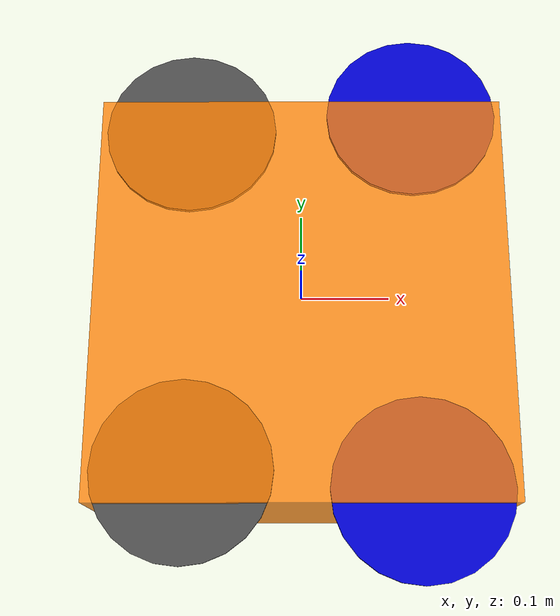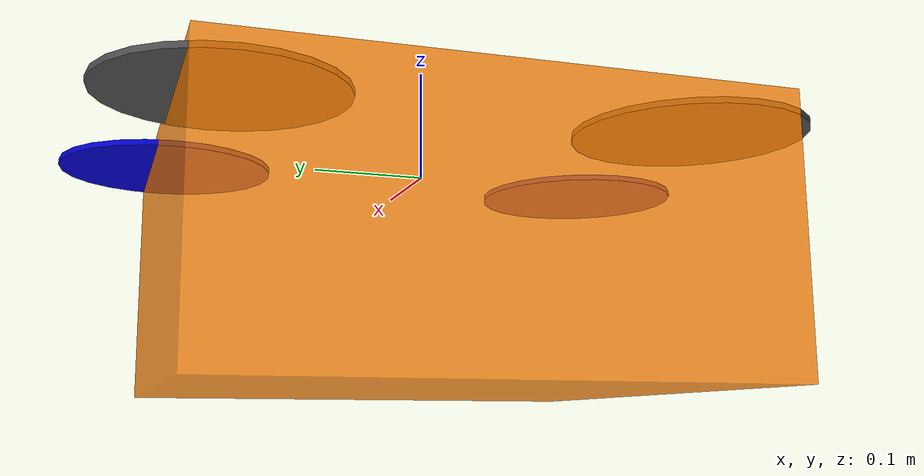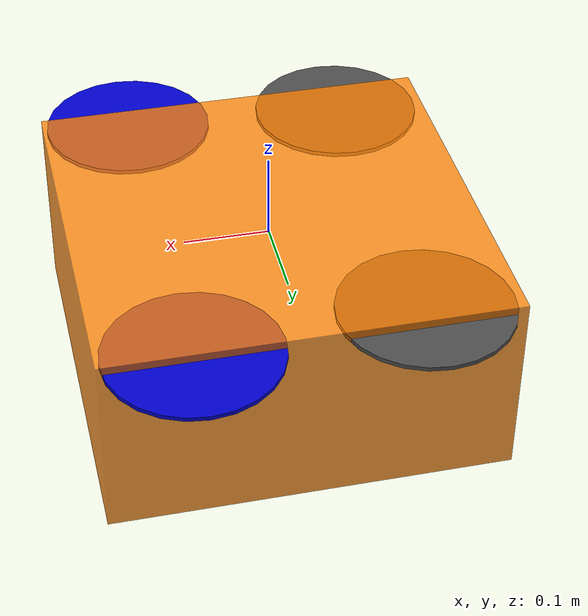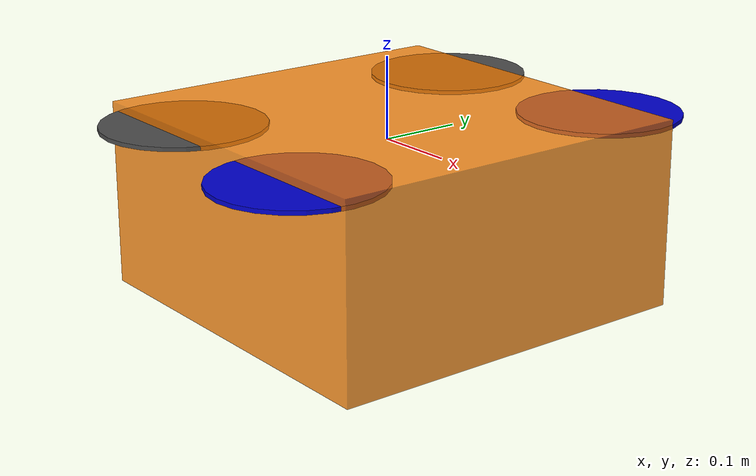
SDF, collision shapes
<?xml version='1.0'?>
<sdf version="1.9">
  <model name="quadcopter">

	<enable_wind>true</enable_wind>
    <include>
      <uri>model://quadcopter_model</uri>
    </include>

    <!-- plugins -->
    <plugin name="gz::sim::systems::LiftDrag" filename="gz-sim-lift-drag-system">
      <a0>0.1</a0>
      <alpha_stall>1.4</alpha_stall>
      <cla>0.2500</cla>
      <cda>0.10</cda>
      <cma>0.00</cma>
      <cla_stall>-0.025</cla_stall>
      <cda_stall>0.0</cda_stall>
      <cma_stall>0.0</cma_stall>
      <area>0.2</area>
      <air_density>1.2041</air_density>
      <cp>0.084 0 0</cp>
      <forward>0 1 0</forward>
      <upward>0 0 1</upward>
      <link_name>quadcopter_model::rotor_0</link_name>
    </plugin>
    <plugin name="gz::sim::systems::LiftDrag" filename="gz-sim-lift-drag-system">
      <a0>0.1</a0>
      <alpha_stall>1.4</alpha_stall>
      <cla>0.2500</cla>
      <cda>0.10</cda>
      <cma>0.00</cma>
      <cla_stall>-0.025</cla_stall>
      <cda_stall>0.0</cda_stall>
      <cma_stall>0.0</cma_stall>
      <area>0.2</area>
      <air_density>1.2041</air_density>
      <cp>-0.084 0 0</cp>
      <forward>0 -1 0</forward>
      <upward>0 0 1</upward>
      <link_name>quadcopter_model::rotor_0</link_name>
    </plugin>

    <plugin name="gz::sim::systems::LiftDrag" filename="gz-sim-lift-drag-system">
      <a0>0.1</a0>
      <alpha_stall>1.4</alpha_stall>
      <cla>0.2500</cla>
      <cda>0.10</cda>
      <cma>0.00</cma>
      <cla_stall>-0.025</cla_stall>
      <cda_stall>0.0</cda_stall>
      <cma_stall>0.0</cma_stall>
      <area>0.2</area>
      <air_density>1.2041</air_density>
      <cp>0.084 0 0</cp>
      <forward>0 1 0</forward>
      <upward>0 0 1</upward>
      <link_name>quadcopter_model::rotor_1</link_name>
    </plugin>
    <plugin name="gz::sim::systems::LiftDrag" filename="gz-sim-lift-drag-system">
      <a0>0.1</a0>
      <alpha_stall>1.4</alpha_stall>
      <cla>0.2500</cla>
      <cda>0.10</cda>
      <cma>0.00</cma>
      <cla_stall>-0.025</cla_stall>
      <cda_stall>0.0</cda_stall>
      <cma_stall>0.0</cma_stall>
      <area>0.2</area>
      <air_density>1.2041</air_density>
      <cp>-0.084 0 0</cp>
      <forward>0 -1 0</forward>
      <upward>0 0 1</upward>
      <link_name>quadcopter_model::rotor_1</link_name>
    </plugin>

    <plugin name="gz::sim::systems::LiftDrag" filename="gz-sim-lift-drag-system">
      <a0>0.1</a0>
      <alpha_stall>1.4</alpha_stall>
      <cla>0.2500</cla>
      <cda>0.10</cda>
      <cma>0.00</cma>
      <cla_stall>-0.025</cla_stall>
      <cda_stall>0.0</cda_stall>
      <cma_stall>0.0</cma_stall>
      <area>0.2</area>
      <air_density>1.2041</air_density>
      <cp>0.084 0 0</cp>
      <forward>0 -1 0</forward>
      <upward>0 0 1</upward>
      <link_name>quadcopter_model::rotor_2</link_name>
    </plugin>
    <plugin name="gz::sim::systems::LiftDrag" filename="gz-sim-lift-drag-system">
      <a0>0.1</a0>
      <alpha_stall>1.4</alpha_stall>
      <cla>0.2500</cla>
      <cda>0.10</cda>
      <cma>0.00</cma>
      <cla_stall>-0.025</cla_stall>
      <cda_stall>0.0</cda_stall>
      <cma_stall>0.0</cma_stall>
      <area>0.2</area>
      <air_density>1.2041</air_density>
      <cp>-0.084 0 0</cp>
      <forward>0 1 0</forward>
      <upward>0 0 1</upward>
      <link_name>quadcopter_model::rotor_2</link_name>
    </plugin>

    <plugin name="gz::sim::systems::LiftDrag" filename="gz-sim-lift-drag-system">
      <a0>0.1</a0>
      <alpha_stall>1.4</alpha_stall>
      <cla>0.2500</cla>
      <cda>0.10</cda>
      <cma>0.00</cma>
      <cla_stall>-0.025</cla_stall>
      <cda_stall>0.0</cda_stall>
      <cma_stall>0.0</cma_stall>
      <area>0.2</area>
      <air_density>1.2041</air_density>
      <cp>0.084 0 0</cp>
      <forward>0 -1 0</forward>
      <upward>0 0 1</upward>
      <link_name>quadcopter_model::rotor_3</link_name>
    </plugin>
    <plugin name="gz::sim::systems::LiftDrag" filename="gz-sim-lift-drag-system">
      <a0>0.1</a0>
      <alpha_stall>1.4</alpha_stall>
      <cla>0.2500</cla>
      <cda>0.10</cda>
      <cma>0.00</cma>
      <cla_stall>-0.025</cla_stall>
      <cda_stall>0.0</cda_stall>
      <cma_stall>0.0</cma_stall>
      <area>0.2</area>
      <air_density>1.2041</air_density>
      <cp>-0.084 0 0</cp>
      <forward>0 1 0</forward>
      <upward>0 0 1</upward>
      <link_name>quadcopter_model::rotor_3</link_name>
    </plugin>

    <!-- X-axis body drag (decelerates forward/backward motion) -->
    <plugin name="gz::sim::systems::LiftDrag" filename="gz-sim-lift-drag-system">
      <a0>0.0</a0>
      <alpha_stall>1.4</alpha_stall>
      <cla>0.0</cla>
      <cda>1.0</cda>
      <cma>0.0</cma>
      <cla_stall>0.0</cla_stall>
      <cda_stall>1.0</cda_stall>
      <cma_stall>0.0</cma_stall>
      <area>0.10</area>
      <air_density>1.2041</air_density>
      <cp>0 0 0</cp>
      <forward>1 0 0</forward>
      <upward>0 0 1</upward>
      <link_name>quadcopter_model::base_link</link_name>
    </plugin>
    <!-- Y-axis body drag (decelerates lateral motion) -->
    <plugin name="gz::sim::systems::LiftDrag" filename="gz-sim-lift-drag-system">
      <a0>0.0</a0>
      <alpha_stall>1.4</alpha_stall>
      <cla>0.0</cla>
      <cda>1.0</cda>
      <cma>0.0</cma>
      <cla_stall>0.0</cla_stall>
      <cda_stall>1.0</cda_stall>
      <cma_stall>0.0</cma_stall>
      <area>0.10</area>
      <air_density>1.2041</air_density>
      <cp>0 0 0</cp>
      <forward>0 1 0</forward>
      <upward>0 0 1</upward>
      <link_name>quadcopter_model::base_link</link_name>
    </plugin>
    <!-- Z-axis body drag (vertical damping) -->
    <plugin name="gz::sim::systems::LiftDrag" filename="gz-sim-lift-drag-system">
      <a0>0.0</a0>
      <alpha_stall>1.4</alpha_stall>
      <cla>0.0</cla>
      <cda>1.0</cda>
      <cma>0.0</cma>
      <cla_stall>0.0</cla_stall>
      <cda_stall>1.0</cda_stall>
      <cma_stall>0.0</cma_stall>
      <area>0.20</area>
      <air_density>1.2041</air_density>
      <cp>0 0 0</cp>
      <forward>0 0 1</forward>
      <upward>1 0 0</upward>
      <link_name>quadcopter_model::base_link</link_name>
    </plugin>

    <plugin name="gz::sim::systems::BetaflightPlugin" filename="BetaflightPlugin">
      <imuName>quadcopter_attitude_control::quadcopter::quadcopter_model::quadcopter_model/imu_link::imu_sensor</imuName>
      <connectionTimeoutMaxCount>5</connectionTimeoutMaxCount>
      <rotor id="0">
        <vel_p_gain>0.01</vel_p_gain>
        <vel_i_gain>0</vel_i_gain>
        <vel_d_gain>0</vel_d_gain>
        <vel_i_max>0</vel_i_max>
        <vel_i_min>0</vel_i_min>
        <vel_cmd_max>2.0</vel_cmd_max>
        <vel_cmd_min>-2.0</vel_cmd_min>
        <jointName>quadcopter_model::rotor_0_joint</jointName>
        <turningDirection>ccw</turningDirection>
        <rotorVelocitySlowdownSim>1</rotorVelocitySlowdownSim>
      </rotor>
      <rotor id="1">
        <vel_p_gain>0.01</vel_p_gain>
        <vel_i_gain>0</vel_i_gain>
        <vel_d_gain>0</vel_d_gain>
        <vel_i_max>0</vel_i_max>
        <vel_i_min>0</vel_i_min>
        <vel_cmd_max>2.0</vel_cmd_max>
        <vel_cmd_min>-2.0</vel_cmd_min>
        <jointName>quadcopter_model::rotor_1_joint</jointName>
        <turningDirection>ccw</turningDirection>
        <rotorVelocitySlowdownSim>1</rotorVelocitySlowdownSim>
      </rotor>
      <rotor id="2">
        <vel_p_gain>0.01</vel_p_gain>
        <vel_i_gain>0</vel_i_gain>
        <vel_d_gain>0</vel_d_gain>
        <vel_i_max>0</vel_i_max>
        <vel_i_min>0</vel_i_min>
        <vel_cmd_max>2.0</vel_cmd_max>
        <vel_cmd_min>-2.0</vel_cmd_min>
        <jointName>quadcopter_model::rotor_2_joint</jointName>
        <turningDirection>cw</turningDirection>
        <rotorVelocitySlowdownSim>1</rotorVelocitySlowdownSim>
      </rotor>
      <rotor id="3">
        <vel_p_gain>0.01</vel_p_gain>
        <vel_i_gain>0</vel_i_gain>
        <vel_d_gain>0</vel_d_gain>
        <vel_i_max>0</vel_i_max>
        <vel_i_min>0</vel_i_min>
        <vel_cmd_max>2.0</vel_cmd_max>
        <vel_cmd_min>-2.0</vel_cmd_min>
        <jointName>quadcopter_model::rotor_3_joint</jointName>
        <turningDirection>cw</turningDirection>
        <rotorVelocitySlowdownSim>1</rotorVelocitySlowdownSim>
      </rotor>
    </plugin>

  </model>
</sdf>

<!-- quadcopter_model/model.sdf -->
<sdf version='1.9'>

  <model name='quadcopter_model'>
	  <enable_wind>true</enable_wind>
    <pose>0 0 0 0 0 0</pose>
    <link name='base_link'>

	  <enable_wind>true</enable_wind>

      <inertial>
        <pose>0 0 0 0 0 0</pose>
        <mass>1.5</mass>
        <inertia>
          <ixx>0.008</ixx>
          <ixy>0</ixy>
          <ixz>0</ixz>
          <iyy>0.015</iyy>
          <iyz>0</iyz>
          <izz>0.017</izz>
        </inertia>
      </inertial>
      <collision name='base_link_collision'>
        <pose>0 0 -0.08 0 0 0</pose>
        <geometry>
          <box>
            <size>0.47 0.47 0.23</size>
          </box>
        </geometry>
        <surface>
          <contact>
            <ode>
              <max_vel>100.0</max_vel>
              <min_depth>0.001</min_depth>
            </ode>
          </contact>
          <friction>
            <ode>
              <mu>1.0</mu>
              <mu2>1.0</mu2>
            </ode>
          </friction>
        </surface>
      </collision>

	  <!-- Main body of the quad -->
      <visual name='base_link_visual'>
        <geometry>
          <mesh>
            <uri>model://quadcopter_model/meshes/iris.dae</uri>
          </mesh>
        </geometry>
        <material>
          <ambient>1 0.5 0 0.8</ambient>
          <diffuse>1 0.5 0 0.8</diffuse>
          <specular>0.2 0.1 0 1</specular>
        </material>
      </visual>
    </link>
    <link name='quadcopter_model/ground_truth/odometry_sensorgt_link'>
      <pose>0 0 0 0 -0 0</pose>
      <inertial>
        <pose>0 0 0 0 -0 0</pose>
        <mass>0.15</mass>
        <inertia>
          <ixx>0.0001</ixx>
          <ixy>0</ixy>
          <ixz>0</ixz>
          <iyy>0.0002</iyy>
          <iyz>0</iyz>
          <izz>0.0002</izz>
        </inertia>
      </inertial>
    </link>
    <joint name='quadcopter_model/ground_truth/odometry_sensorgt_joint' type='revolute'>
      <child>quadcopter_model/ground_truth/odometry_sensorgt_link</child>
      <parent>base_link</parent>
      <axis>
        <xyz>0 0 1</xyz>
        <limit>
          <lower>0</lower>
          <upper>0</upper>
          <effort>0</effort>
          <velocity>0</velocity>
        </limit>
        <dynamics>
          <damping>1.0</damping>
        </dynamics>
      </axis>
      <physics>
        <ode>
          <implicit_spring_damper>1</implicit_spring_damper>
        </ode>
      </physics>
    </joint>
    <link name='quadcopter_model/imu_link'>
      <inertial>
        <pose>0 0 0 0 0 0</pose>
        <mass>0.15</mass>
        <inertia>
          <ixx>0.00001</ixx>
          <ixy>0</ixy>
          <ixz>0</ixz>
          <iyy>0.00002</iyy>
          <iyz>0</iyz>
          <izz>0.00002</izz>
        </inertia>
      </inertial>
      <sensor name="imu_sensor" type="imu">
        <pose>0 0 0 3.141593 0 0</pose>
        <always_on>1</always_on>
        <update_rate>1000.0</update_rate>
		<imu>
			<angular_velocity>
				<!-- At runtime these are filled in -->
				<x>
					<noise type="none">
						<stddev>0.1</stddev>
					</noise>
				</x>
				<y>
					<noise type="none">
						<stddev>0.1</stddev>
					</noise>
				</y>
				<z>
					<noise type="none">
						<stddev>0.1</stddev>
					</noise>
				</z>
			</angular_velocity>
		</imu>
      </sensor>
    </link>
    <joint name='quadcopter_model/imu_joint' type='revolute'>
      <child>quadcopter_model/imu_link</child>
      <parent>base_link</parent>
      <axis>
        <xyz>0 0 1</xyz>
        <limit>
          <lower>0</lower>
          <upper>0</upper>
          <effort>0</effort>
          <velocity>0</velocity>
        </limit>
        <dynamics>
          <damping>1.0</damping>
        </dynamics>
      </axis>
      <physics>
        <ode>
          <implicit_spring_damper>1</implicit_spring_damper>
        </ode>
      </physics>
    </joint>
    <link name='rotor_0'>
      <pose>0.13 -0.22 0.023 0 -0 0</pose>
      <inertial>
        <pose>0 0 0 0 -0 0</pose>
        <mass>0.025</mass>
        <inertia>
          <ixx>9.75e-06</ixx>
          <ixy>0</ixy>
          <ixz>0</ixz>
          <iyy>0.000166704</iyy>
          <iyz>0</iyz>
          <izz>0.000167604</izz>
        </inertia>
      </inertial>
      <collision name='rotor_0_collision'>
        <pose>0 0 0 0 -0 0</pose>
        <geometry>
          <cylinder>
            <length>0.005</length>
            <radius>0.1</radius>
          </cylinder>
        </geometry>
        <surface>
          <contact>
            <ode/>
          </contact>
          <friction>
            <ode/>
          </friction>
        </surface>
      </collision>
      <visual name='rotor_0_visual'>
        <pose>0 0 0 0 -0 0</pose>
        <geometry>
          <mesh>
            <scale>1 1 1</scale>
            <uri>model://quadcopter_model/meshes/iris_prop_ccw.dae</uri>
          </mesh>
        </geometry>
        <material>
          <ambient>0 0 0.8 1</ambient>
          <diffuse>0 0 0.8 1</diffuse>
          <specular>0.1 0.1 0.3 1</specular>
        </material>
      </visual>
      <gravity>1</gravity>
      <velocity_decay/>
      <self_collide>0</self_collide>
    </link>
    <joint name='rotor_0_joint' type='revolute'>
      <child>rotor_0</child>
      <parent>base_link</parent>
      <axis>
        <xyz>0 0 1</xyz>
        <limit>
          <lower>-1e+16</lower>
          <upper>1e+16</upper>
        </limit>
        <dynamics>
          <damping>0.004</damping>
        </dynamics>
      </axis>
      <physics>
        <ode>
          <implicit_spring_damper>1</implicit_spring_damper>
        </ode>
      </physics>
    </joint>
    <link name='rotor_1'>
      <pose>-0.13 0.2 0.023 0 -0 0</pose>
      <inertial>
        <pose>0 0 0 0 -0 0</pose>
        <mass>0.025</mass>
        <inertia>
          <ixx>9.75e-06</ixx>
          <ixy>0</ixy>
          <ixz>0</ixz>
          <iyy>0.000166704</iyy>
          <iyz>0</iyz>
          <izz>0.000167604</izz>
        </inertia>
      </inertial>
      <collision name='rotor_1_collision'>
        <pose>0 0 0 0 -0 0</pose>
        <geometry>
          <cylinder>
            <length>0.005</length>
            <radius>0.1</radius>
          </cylinder>
        </geometry>
        <surface>
          <contact>
            <ode/>
          </contact>
          <friction>
            <ode/>
          </friction>
        </surface>
      </collision>
      <visual name='rotor_1_visual'>
        <pose>0 0 0 0 -0 0</pose>
        <geometry>
          <mesh>
            <scale>1 1 1</scale>
            <uri>model://quadcopter_model/meshes/iris_prop_ccw.dae</uri>
          </mesh>
        </geometry>
        <material>
          <ambient>0.3 0.3 0.3 1</ambient>
          <diffuse>0.3 0.3 0.3 1</diffuse>
          <specular>0.1 0.1 0.1 1</specular>
        </material>
      </visual>
      <gravity>1</gravity>
      <velocity_decay/>
      <self_collide>0</self_collide>
    </link>
    <joint name='rotor_1_joint' type='revolute'>
      <child>rotor_1</child>
      <parent>base_link</parent>
      <axis>
        <xyz>0 0 1</xyz>
        <limit>
          <lower>-1e+16</lower>
          <upper>1e+16</upper>
        </limit>
        <dynamics>
          <damping>0.004</damping>
        </dynamics>
      </axis>
      <physics>
        <ode>
          <implicit_spring_damper>1</implicit_spring_damper>
        </ode>
      </physics>
    </joint>
    <link name='rotor_2'>
      <pose>0.13 0.22 0.023 0 -0 0</pose>
      <inertial>
        <pose>0 0 0 0 -0 0</pose>
        <mass>0.025</mass>
        <inertia>
          <ixx>9.75e-06</ixx>
          <ixy>0</ixy>
          <ixz>0</ixz>
          <iyy>0.000166704</iyy>
          <iyz>0</iyz>
          <izz>0.000167604</izz>
        </inertia>
      </inertial>
      <collision name='rotor_2_collision'>
        <pose>0 0 0 0 -0 0</pose>
        <geometry>
          <cylinder>
            <length>0.005</length>
            <radius>0.1</radius>
          </cylinder>
        </geometry>
        <surface>
          <contact>
            <ode/>
          </contact>
          <friction>
            <ode/>
          </friction>
        </surface>
      </collision>
      <visual name='rotor_2_visual'>
        <pose>0 0 0 0 -0 0</pose>
        <geometry>
          <mesh>
            <scale>1 1 1</scale>
            <uri>model://quadcopter_model/meshes/iris_prop_cw.dae</uri>
          </mesh>
        </geometry>
        <material>
          <ambient>0 0 0.8 1</ambient>
          <diffuse>0 0 0.8 1</diffuse>
          <specular>0.1 0.1 0.3 1</specular>
        </material>
      </visual>
      <gravity>1</gravity>
      <velocity_decay/>
      <self_collide>0</self_collide>
    </link>
    <joint name='rotor_2_joint' type='revolute'>
      <child>rotor_2</child>
      <parent>base_link</parent>
      <axis>
        <xyz>0 0 1</xyz>
        <limit>
          <lower>-1e+16</lower>
          <upper>1e+16</upper>
        </limit>
        <dynamics>
          <damping>0.004</damping>
        </dynamics>
      </axis>
      <physics>
        <ode>
          <implicit_spring_damper>1</implicit_spring_damper>
        </ode>
      </physics>
    </joint>
    <link name='rotor_3'>
      <pose>-0.13 -0.2 0.023 0 -0 0</pose>
      <inertial>
        <pose>0 0 0 0 -0 0</pose>
        <mass>0.025</mass>
        <inertia>
          <ixx>9.75e-06</ixx>
          <ixy>0</ixy>
          <ixz>0</ixz>
          <iyy>0.000166704</iyy>
          <iyz>0</iyz>
          <izz>0.000167604</izz>
        </inertia>
      </inertial>
      <collision name='rotor_3_collision'>
        <pose>0 0 0 0 -0 0</pose>
        <geometry>
          <cylinder>
            <length>0.005</length>
            <radius>0.1</radius>
          </cylinder>
        </geometry>
        <surface>
          <contact>
            <ode/>
          </contact>
          <friction>
            <ode/>
          </friction>
        </surface>
      </collision>
      <visual name='rotor_3_visual'>
        <pose>0 0 0 0 -0 0</pose>
        <geometry>
          <mesh>
            <scale>1 1 1</scale>
            <uri>model://quadcopter_model/meshes/iris_prop_cw.dae</uri>
          </mesh>
        </geometry>
        <material>
          <ambient>0.3 0.3 0.3 1</ambient>
          <diffuse>0.3 0.3 0.3 1</diffuse>
          <specular>0.1 0.1 0.1 1</specular>
        </material>
      </visual>
      <gravity>1</gravity>
      <velocity_decay/>
      <self_collide>0</self_collide>
    </link>
    <joint name='rotor_3_joint' type='revolute'>
      <child>rotor_3</child>
      <parent>base_link</parent>
      <axis>
        <xyz>0 0 1</xyz>
        <limit>
          <lower>-1e+16</lower>
          <upper>1e+16</upper>
        </limit>
        <dynamics>
          <damping>0.004</damping>
        </dynamics>
      </axis>
      <physics>
        <ode>
          <implicit_spring_damper>1</implicit_spring_damper>
        </ode>
      </physics>
    </joint>

    <!-- Lift/Drag plugins for rotor aerodynamics -->
    <plugin name="gz::sim::systems::LiftDrag" filename="gz-sim-lift-drag-system">
      <a0>0.1</a0>
      <alpha_stall>1.4</alpha_stall>
      <cla>0.2500</cla>
      <cda>0.10</cda>
      <cma>0.00</cma>
      <cla_stall>-0.025</cla_stall>
      <cda_stall>0.0</cda_stall>
      <cma_stall>0.0</cma_stall>
      <area>0.2</area>
      <air_density>1.2041</air_density>
      <cp>0.084 0 0</cp>
      <forward>0 1 0</forward>
      <upward>0 0 1</upward>
      <link_name>rotor_0</link_name>
    </plugin>
    <plugin name="gz::sim::systems::LiftDrag" filename="gz-sim-lift-drag-system">
      <a0>0.1</a0>
      <alpha_stall>1.4</alpha_stall>
      <cla>0.2500</cla>
      <cda>0.10</cda>
      <cma>0.00</cma>
      <cla_stall>-0.025</cla_stall>
      <cda_stall>0.0</cda_stall>
      <cma_stall>0.0</cma_stall>
      <area>0.2</area>
      <air_density>1.2041</air_density>
      <cp>-0.084 0 0</cp>
      <forward>0 -1 0</forward>
      <upward>0 0 1</upward>
      <link_name>rotor_0</link_name>
    </plugin>

    <plugin name="gz::sim::systems::LiftDrag" filename="gz-sim-lift-drag-system">
      <a0>0.1</a0>
      <alpha_stall>1.4</alpha_stall>
      <cla>0.2500</cla>
      <cda>0.10</cda>
      <cma>0.00</cma>
      <cla_stall>-0.025</cla_stall>
      <cda_stall>0.0</cda_stall>
      <cma_stall>0.0</cma_stall>
      <area>0.2</area>
      <air_density>1.2041</air_density>
      <cp>0.084 0 0</cp>
      <forward>0 1 0</forward>
      <upward>0 0 1</upward>
      <link_name>rotor_1</link_name>
    </plugin>
    <plugin name="gz::sim::systems::LiftDrag" filename="gz-sim-lift-drag-system">
      <a0>0.1</a0>
      <alpha_stall>1.4</alpha_stall>
      <cla>0.2500</cla>
      <cda>0.10</cda>
      <cma>0.00</cma>
      <cla_stall>-0.025</cla_stall>
      <cda_stall>0.0</cda_stall>
      <cma_stall>0.0</cma_stall>
      <area>0.2</area>
      <air_density>1.2041</air_density>
      <cp>-0.084 0 0</cp>
      <forward>0 -1 0</forward>
      <upward>0 0 1</upward>
      <link_name>rotor_1</link_name>
    </plugin>

    <plugin name="gz::sim::systems::LiftDrag" filename="gz-sim-lift-drag-system">
      <a0>0.1</a0>
      <alpha_stall>1.4</alpha_stall>
      <cla>0.2500</cla>
      <cda>0.10</cda>
      <cma>0.00</cma>
      <cla_stall>-0.025</cla_stall>
      <cda_stall>0.0</cda_stall>
      <cma_stall>0.0</cma_stall>
      <area>0.2</area>
      <air_density>1.2041</air_density>
      <cp>0.084 0 0</cp>
      <forward>0 -1 0</forward>
      <upward>0 0 1</upward>
      <link_name>rotor_2</link_name>
    </plugin>
    <plugin name="gz::sim::systems::LiftDrag" filename="gz-sim-lift-drag-system">
      <a0>0.1</a0>
      <alpha_stall>1.4</alpha_stall>
      <cla>0.2500</cla>
      <cda>0.10</cda>
      <cma>0.00</cma>
      <cla_stall>-0.025</cla_stall>
      <cda_stall>0.0</cda_stall>
      <cma_stall>0.0</cma_stall>
      <area>0.2</area>
      <air_density>1.2041</air_density>
      <cp>-0.084 0 0</cp>
      <forward>0 1 0</forward>
      <upward>0 0 1</upward>
      <link_name>rotor_2</link_name>
    </plugin>

    <plugin name="gz::sim::systems::LiftDrag" filename="gz-sim-lift-drag-system">
      <a0>0.1</a0>
      <alpha_stall>1.4</alpha_stall>
      <cla>0.2500</cla>
      <cda>0.10</cda>
      <cma>0.00</cma>
      <cla_stall>-0.025</cla_stall>
      <cda_stall>0.0</cda_stall>
      <cma_stall>0.0</cma_stall>
      <area>0.2</area>
      <air_density>1.2041</air_density>
      <cp>0.084 0 0</cp>
      <forward>0 -1 0</forward>
      <upward>0 0 1</upward>
      <link_name>rotor_3</link_name>
    </plugin>
    <plugin name="gz::sim::systems::LiftDrag" filename="gz-sim-lift-drag-system">
      <a0>0.1</a0>
      <alpha_stall>1.4</alpha_stall>
      <cla>0.2500</cla>
      <cda>0.10</cda>
      <cma>0.00</cma>
      <cla_stall>-0.025</cla_stall>
      <cda_stall>0.0</cda_stall>
      <cma_stall>0.0</cma_stall>
      <area>0.2</area>
      <air_density>1.2041</air_density>
      <cp>-0.084 0 0</cp>
      <forward>0 1 0</forward>
      <upward>0 0 1</upward>
      <link_name>rotor_3</link_name>
    </plugin>

    <!-- X-axis body drag (decelerates forward/backward motion) -->
    <plugin name="gz::sim::systems::LiftDrag" filename="gz-sim-lift-drag-system">
      <a0>0.0</a0>
      <alpha_stall>1.4</alpha_stall>
      <cla>0.0</cla>
      <cda>1.0</cda>
      <cma>0.0</cma>
      <cla_stall>0.0</cla_stall>
      <cda_stall>1.0</cda_stall>
      <cma_stall>0.0</cma_stall>
      <area>0.10</area>
      <air_density>1.2041</air_density>
      <cp>0 0 0</cp>
      <forward>1 0 0</forward>
      <upward>0 0 1</upward>
      <link_name>base_link</link_name>
    </plugin>
    <!-- Y-axis body drag (decelerates lateral motion) -->
    <plugin name="gz::sim::systems::LiftDrag" filename="gz-sim-lift-drag-system">
      <a0>0.0</a0>
      <alpha_stall>1.4</alpha_stall>
      <cla>0.0</cla>
      <cda>1.0</cda>
      <cma>0.0</cma>
      <cla_stall>0.0</cla_stall>
      <cda_stall>1.0</cda_stall>
      <cma_stall>0.0</cma_stall>
      <area>0.10</area>
      <air_density>1.2041</air_density>
      <cp>0 0 0</cp>
      <forward>0 1 0</forward>
      <upward>0 0 1</upward>
      <link_name>base_link</link_name>
    </plugin>
    <!-- Z-axis body drag (vertical damping) -->
    <plugin name="gz::sim::systems::LiftDrag" filename="gz-sim-lift-drag-system">
      <a0>0.0</a0>
      <alpha_stall>1.4</alpha_stall>
      <cla>0.0</cla>
      <cda>1.0</cda>
      <cma>0.0</cma>
      <cla_stall>0.0</cla_stall>
      <cda_stall>1.0</cda_stall>
      <cma_stall>0.0</cma_stall>
      <area>0.20</area>
      <air_density>1.2041</air_density>
      <cp>0 0 0</cp>
      <forward>0 0 1</forward>
      <upward>1 0 0</upward>
      <link_name>base_link</link_name>
    </plugin>

    <!-- Betaflight SITL plugin -->
    <plugin name="gz::sim::systems::BetaflightPlugin" filename="BetaflightPlugin">
      <imuName>quadcopter_model/imu_link::imu_sensor</imuName>
      <connectionTimeoutMaxCount>5</connectionTimeoutMaxCount>
      <rotor id="0">
        <vel_p_gain>0.01</vel_p_gain>
        <vel_i_gain>0</vel_i_gain>
        <vel_d_gain>0</vel_d_gain>
        <vel_i_max>0</vel_i_max>
        <vel_i_min>0</vel_i_min>
        <vel_cmd_max>2.0</vel_cmd_max>
        <vel_cmd_min>-2.0</vel_cmd_min>
        <jointName>rotor_0_joint</jointName>
        <turningDirection>ccw</turningDirection>
        <rotorVelocitySlowdownSim>1</rotorVelocitySlowdownSim>
      </rotor>
      <rotor id="1">
        <vel_p_gain>0.01</vel_p_gain>
        <vel_i_gain>0</vel_i_gain>
        <vel_d_gain>0</vel_d_gain>
        <vel_i_max>0</vel_i_max>
        <vel_i_min>0</vel_i_min>
        <vel_cmd_max>2.0</vel_cmd_max>
        <vel_cmd_min>-2.0</vel_cmd_min>
        <jointName>rotor_1_joint</jointName>
        <turningDirection>ccw</turningDirection>
        <rotorVelocitySlowdownSim>1</rotorVelocitySlowdownSim>
      </rotor>
      <rotor id="2">
        <vel_p_gain>0.01</vel_p_gain>
        <vel_i_gain>0</vel_i_gain>
        <vel_d_gain>0</vel_d_gain>
        <vel_i_max>0</vel_i_max>
        <vel_i_min>0</vel_i_min>
        <vel_cmd_max>2.0</vel_cmd_max>
        <vel_cmd_min>-2.0</vel_cmd_min>
        <jointName>rotor_2_joint</jointName>
        <turningDirection>cw</turningDirection>
        <rotorVelocitySlowdownSim>1</rotorVelocitySlowdownSim>
      </rotor>
      <rotor id="3">
        <vel_p_gain>0.01</vel_p_gain>
        <vel_i_gain>0</vel_i_gain>
        <vel_d_gain>0</vel_d_gain>
        <vel_i_max>0</vel_i_max>
        <vel_i_min>0</vel_i_min>
        <vel_cmd_max>2.0</vel_cmd_max>
        <vel_cmd_min>-2.0</vel_cmd_min>
        <jointName>rotor_3_joint</jointName>
        <turningDirection>cw</turningDirection>
        <rotorVelocitySlowdownSim>1</rotorVelocitySlowdownSim>
      </rotor>
    </plugin>

    <static>0</static>
  </model>
</sdf>
